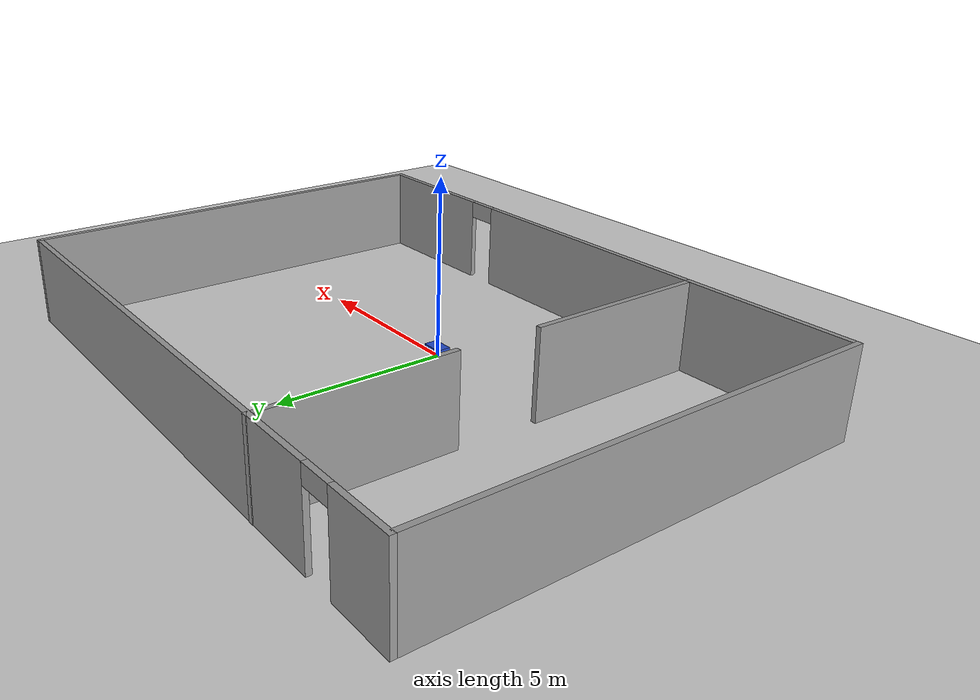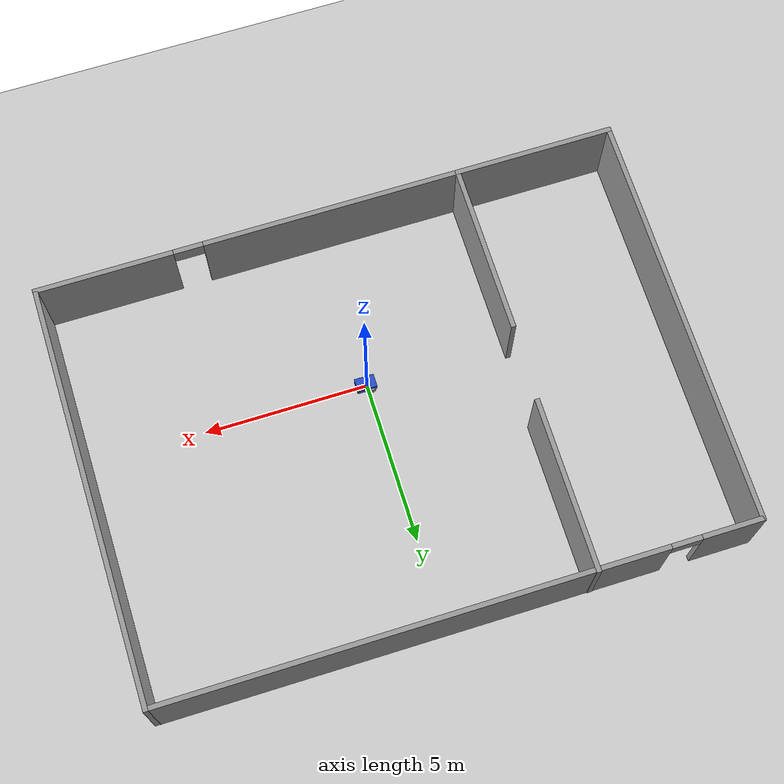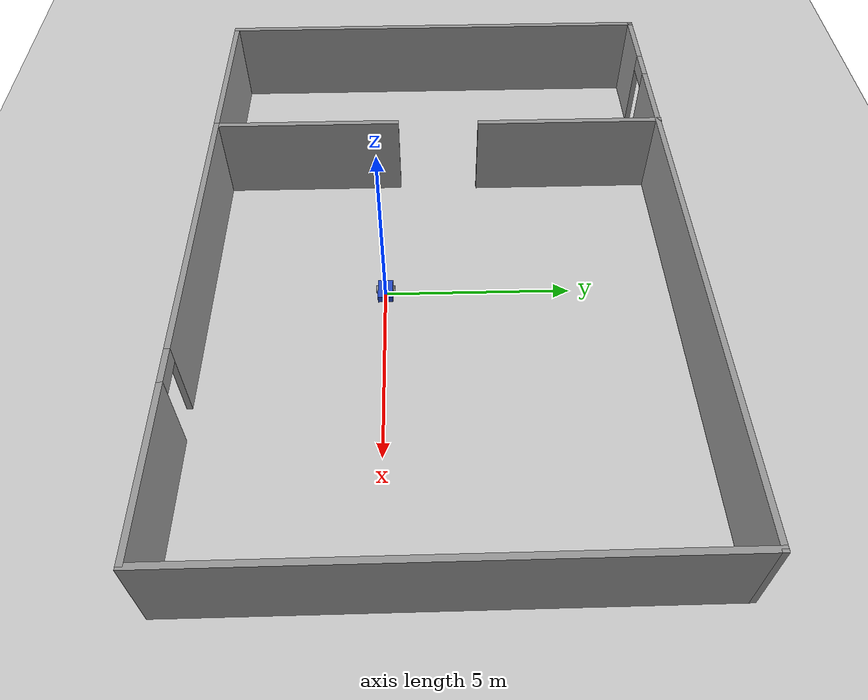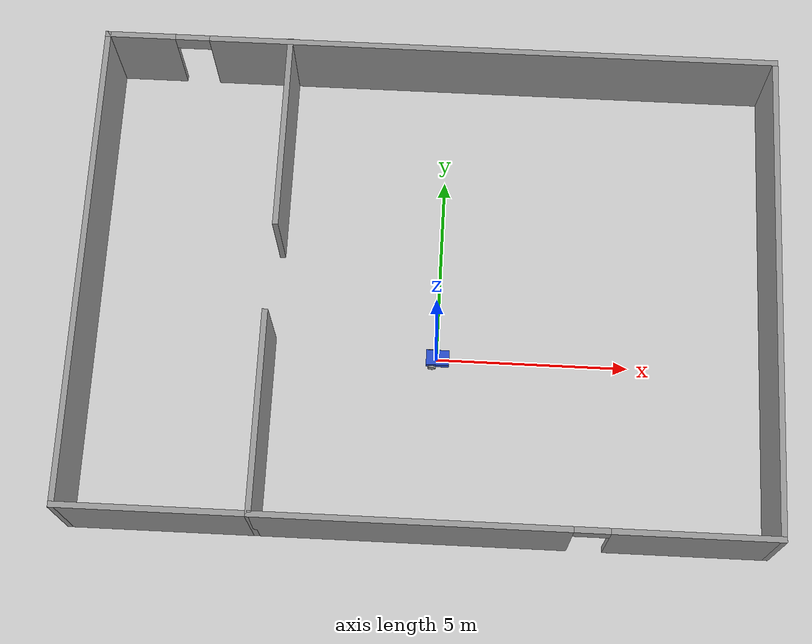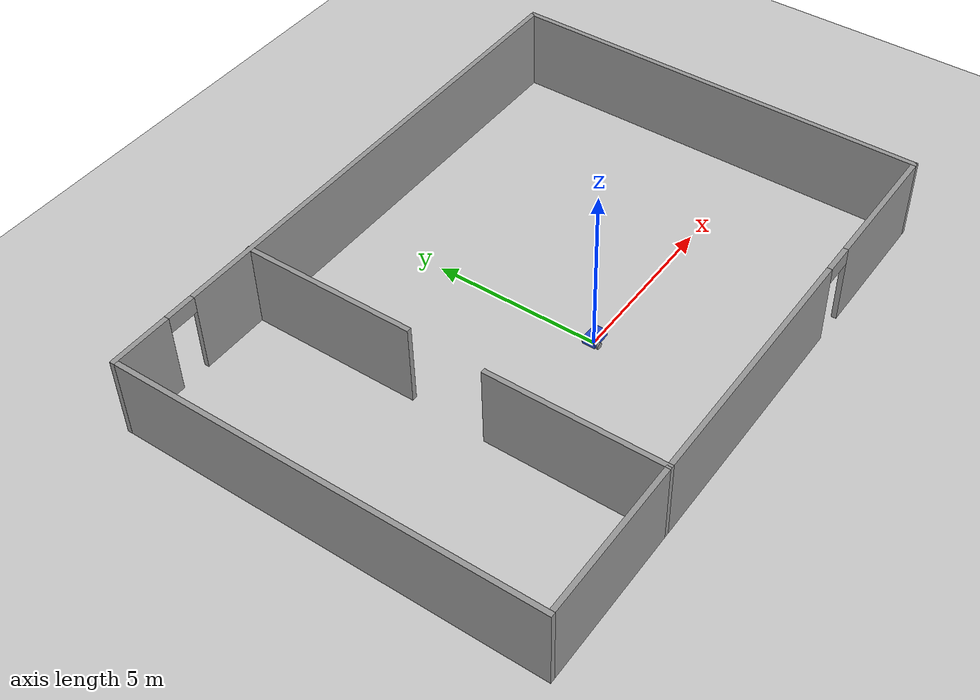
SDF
<sdf version="1.7">
 <world name="default">
  <light name="sun" type="directional">
   <pose>0 0 10 0 -0 0</pose>
   <diffuse>0.8 0.8 0.8 1</diffuse>
   <specular>0.2 0.2 0.2 1</specular>
   <attenuation>
    <range>1000</range>
    <constant>0.9</constant>
    <linear>0.01</linear>
    <quadratic>0.001</quadratic>
   </attenuation>
   <direction>-0.5 0.1 -0.9</direction>
   <spot><inner_angle>0</inner_angle><outer_angle>0</outer_angle><falloff>0</falloff></spot>
  </light>
  <model name="ground_plane">
   <static>1</static>
   <link name="link">
    <collision name="collision">
     <geometry><plane><normal>0 0 1</normal><size>100 100</size></plane></geometry>
     <surface><friction><ode><mu>100</mu><mu2>50</mu2></ode></friction></surface>
    </collision>
    <visual name="visual">
     <cast_shadows>0</cast_shadows>
     <geometry><plane><normal>0 0 1</normal><size>100 100</size></plane></geometry>
     <material>
      <script><uri>file://media/materials/scripts/gazebo.material</uri><name>Gazebo/Grey</name></script>
     </material>
    </visual>
   </link>
  </model>
  <gravity>0 0 -9.8</gravity>
  <magnetic_field>6e-06 2.3e-05 -4.2e-05</magnetic_field>
  <atmosphere type="adiabatic"/>
  <physics type="ode">
   <max_step_size>0.001</max_step_size>
   <real_time_factor>1</real_time_factor>
   <real_time_update_rate>1000</real_time_update_rate>
  </physics>
  <scene><ambient>0.4 0.4 0.4 1</ambient><background>0.7 0.7 0.7 1</background><shadows>1</shadows></scene>
  <audio><device>default</device></audio>
  <spherical_coordinates>
   <surface_model>EARTH_WGS84</surface_model>
   <latitude_deg>0</latitude_deg>
   <longitude_deg>0</longitude_deg>
   <elevation>0</elevation>
   <heading_deg>0</heading_deg>
  </spherical_coordinates>
  <model name="my_robot">
   <link name="base_footprint">
    <inertial>
     <pose>0.018182 0 0.186364 0 -0 0</pose>
     <mass>5.5</mass>
     <inertia>
      <ixx>0.678894</ixx>
      <ixy>0</ixy>
      <ixz>0.0136364</ixz>
      <iyy>0.363742</iyy>
      <iyz>0</iyz>
      <izz>0.886848</izz>
     </inertia>
    </inertial>
    <collision name="base_footprint_fixed_joint_lump__base_link_collision">
     <pose>0 0 0.2 0 -0 0</pose>
     <geometry><box><size>0.6 0.4 0.2</size></box></geometry>
    </collision>
    <collision name="base_footprint_fixed_joint_lump__caster_wheel_link_collision_1">
     <pose>0.2 0 0.05 0 -0 0</pose>
     <geometry><sphere><radius>0.05</radius></sphere></geometry>
     <surface><friction><ode><mu>0.1</mu><mu2>0.1</mu2></ode></friction></surface>
    </collision>
    <visual name="base_footprint_fixed_joint_lump__base_link_visual">
     <pose>0 0 0.2 0 -0 0</pose>
     <geometry><box><size>0.6 0.4 0.2</size></box></geometry>
     <material>
      <script><name>Gazebo/Blue</name><uri>file://media/materials/scripts/gazebo.material</uri></script>
     </material>
    </visual>
    <visual name="base_footprint_fixed_joint_lump__caster_wheel_link_visual_1">
     <pose>0.2 0 0.05 0 -0 0</pose>
     <geometry><sphere><radius>0.05</radius></sphere></geometry>
     <material>
      <script><name>Gazebo/Grey</name><uri>file://media/materials/scripts/gazebo.material</uri></script>
     </material>
    </visual>
   </link>
   <joint name="base_left_back_wheel_joint" type="revolute">
    <pose relative_to="base_footprint">-0.15 0.225 0.1 0 -0 0</pose>
    <parent>base_footprint</parent>
    <child>left_wheel_link</child>
    <axis>
     <xyz>0 1 0</xyz>
     <limit><lower>-1e+16</lower><upper>1e+16</upper></limit>
     <dynamics><spring_reference>0</spring_reference><spring_stiffness>0</spring_stiffness></dynamics>
    </axis>
   </joint>
   <link name="left_wheel_link">
    <pose relative_to="base_left_back_wheel_joint">0 0 0 0 -0 0</pose>
    <inertial>
     <pose>0 0 0 1.5708 -0 0</pose>
     <mass>1</mass>
     <inertia><ixx>0.0108333</ixx><ixy>0</ixy><ixz>0</ixz><iyy>0.0108333</iyy><iyz>0</iyz><izz>0.02</izz></inertia>
    </inertial>
    <collision name="left_wheel_link_collision">
     <pose>0 0 0 1.5708 -0 0</pose>
     <geometry><cylinder><length>0.05</length><radius>0.1</radius></cylinder></geometry>
    </collision>
    <visual name="left_wheel_link_visual">
     <pose>0 0 0 1.5708 -0 0</pose>
     <geometry><cylinder><length>0.05</length><radius>0.1</radius></cylinder></geometry>
     <material>
      <script><name>Gazebo/Grey</name><uri>file://media/materials/scripts/gazebo.material</uri></script>
     </material>
    </visual>
   </link>
   <joint name="base_right_back_wheel_joint" type="revolute">
    <pose relative_to="base_footprint">-0.15 -0.225 0.1 0 -0 0</pose>
    <parent>base_footprint</parent>
    <child>right_wheel_link</child>
    <axis>
     <xyz>0 1 0</xyz>
     <limit><lower>-1e+16</lower><upper>1e+16</upper></limit>
     <dynamics><spring_reference>0</spring_reference><spring_stiffness>0</spring_stiffness></dynamics>
    </axis>
   </joint>
   <link name="right_wheel_link">
    <pose relative_to="base_right_back_wheel_joint">0 0 0 0 -0 0</pose>
    <inertial>
     <pose>0 0 0 1.5708 -0 0</pose>
     <mass>1</mass>
     <inertia><ixx>0.0108333</ixx><ixy>0</ixy><ixz>0</ixz><iyy>0.0108333</iyy><iyz>0</iyz><izz>0.02</izz></inertia>
    </inertial>
    <collision name="right_wheel_link_collision">
     <pose>0 0 0 1.5708 -0 0</pose>
     <geometry><cylinder><length>0.05</length><radius>0.1</radius></cylinder></geometry>
    </collision>
    <visual name="right_wheel_link_visual">
     <pose>0 0 0 1.5708 -0 0</pose>
     <geometry><cylinder><length>0.05</length><radius>0.1</radius></cylinder></geometry>
     <material>
      <script><name>Gazebo/Grey</name><uri>file://media/materials/scripts/gazebo.material</uri></script>
     </material>
    </visual>
   </link>
   <static>0</static>
   <plugin name="diff_drive_controller" filename="libgazebo_ros_diff_drive.so">
    <update_rate>50</update_rate>
    <left_joint>base_left_back_wheel_joint</left_joint>
    <right_joint>base_right_back_wheel_joint</right_joint>
    <wheel_separation>0.45</wheel_separation>
    <wheel_diameter>0.2</wheel_diameter>
    <publish_odom>1</publish_odom>
    <publish_odom_tf>1</publish_odom_tf>
    <publish_wheel_tf>1</publish_wheel_tf>
    <odometry_topic>odom</odometry_topic>
    <odometry_frame>odom</odometry_frame>
    <robot_base_frame>base_footprint</robot_base_frame>
   </plugin>
   <pose>0.040817 0.000353 0 0 0 -0.001752</pose>
  </model>
  <model name="test">
   <pose>-0.26 1.53904 0 0 -0 0</pose>
   <link name="Wall_0">
    <pose>2.375 -6.30904 0 0 -0 0</pose>
    <visual name="Wall_0_Visual_0">
     <pose>-2.55017 0 1.25 0 -0 0</pose>
     <geometry><box><size>7.89965 0.15 2.5</size></box></geometry>
     <material>
      <script><uri>file://media/materials/scripts/gazebo.material</uri><name>Gazebo/Grey</name></script>
      <ambient>1 1 1 1</ambient>
     </material>
     <meta><layer>0</layer></meta>
    </visual>
    <collision name="Wall_0_Collision_0">
     <geometry><box><size>7.89965 0.15 2.5</size></box></geometry>
     <pose>-2.55017 0 1.25 0 -0 0</pose>
    </collision>
    <visual name="Wall_0_Visual_1">
     <pose>4.39983 0 1.25 0 -0 0</pose>
     <geometry><box><size>4.20035 0.15 2.5</size></box></geometry>
     <material>
      <script><uri>file://media/materials/scripts/gazebo.material</uri><name>Gazebo/Grey</name></script>
      <ambient>1 1 1 1</ambient>
     </material>
     <meta><layer>0</layer></meta>
    </visual>
    <collision name="Wall_0_Collision_1">
     <geometry><box><size>4.20035 0.15 2.5</size></box></geometry>
     <pose>4.39983 0 1.25 0 -0 0</pose>
    </collision>
    <visual name="Wall_0_Visual_2">
     <pose>1.84965 0 2.25 0 -0 0</pose>
     <geometry><box><size>0.9 0.15 0.5</size></box></geometry>
     <material>
      <script><uri>file://media/materials/scripts/gazebo.material</uri><name>Gazebo/Grey</name></script>
      <ambient>1 1 1 1</ambient>
     </material>
     <meta><layer>0</layer></meta>
    </visual>
    <collision name="Wall_0_Collision_2">
     <geometry><box><size>0.9 0.15 0.5</size></box></geometry>
     <pose>1.84965 0 2.25 0 -0 0</pose>
    </collision>
   </link>
   <link name="Wall_1">
    <collision name="Wall_1_Collision">
     <geometry><box><size>12.75 0.15 2.5</size></box></geometry>
     <pose>0 0 1.25 0 -0 0</pose>
    </collision>
    <visual name="Wall_1_Visual">
     <pose>0 0 1.25 0 -0 0</pose>
     <geometry><box><size>12.75 0.15 2.5</size></box></geometry>
     <material>
      <script><uri>file://media/materials/scripts/gazebo.material</uri><name>Gazebo/Grey</name></script>
      <ambient>1 1 1 1</ambient>
     </material>
     <meta><layer>0</layer></meta>
    </visual>
    <pose>8.8 -0.009043 0 0 -0 1.5708</pose>
   </link>
   <link name="Wall_2">
    <pose>0 6.29096 0 0 -0 3.14159</pose>
    <visual name="Wall_2_Visual_0">
     <pose>-1.38 0 1.25 0 -0 0</pose>
     <geometry><box><size>14.99 0.15 2.5</size></box></geometry>
     <material>
      <script><uri>file://media/materials/scripts/gazebo.material</uri><name>Gazebo/Grey</name></script>
      <ambient>1 1 1 1</ambient>
     </material>
     <meta><layer>0</layer></meta>
    </visual>
    <collision name="Wall_2_Collision_0">
     <geometry><box><size>14.99 0.15 2.5</size></box></geometry>
     <pose>-1.38 0 1.25 0 -0 0</pose>
    </collision>
    <visual name="Wall_2_Visual_1">
     <pose>7.945 0 1.25 0 -0 0</pose>
     <geometry><box><size>1.86 0.15 2.5</size></box></geometry>
     <material>
      <script><uri>file://media/materials/scripts/gazebo.material</uri><name>Gazebo/Grey</name></script>
      <ambient>1 1 1 1</ambient>
     </material>
     <meta><layer>0</layer></meta>
    </visual>
    <collision name="Wall_2_Collision_1">
     <geometry><box><size>1.86 0.15 2.5</size></box></geometry>
     <pose>7.945 0 1.25 0 -0 0</pose>
    </collision>
    <visual name="Wall_2_Visual_2">
     <pose>6.565 0 2.25 0 -0 0</pose>
     <geometry><box><size>0.9 0.15 0.5</size></box></geometry>
     <material>
      <script><uri>file://media/materials/scripts/gazebo.material</uri><name>Gazebo/Grey</name></script>
      <ambient>1 1 1 1</ambient>
     </material>
     <meta><layer>0</layer></meta>
    </visual>
    <collision name="Wall_2_Collision_2">
     <geometry><box><size>0.9 0.15 0.5</size></box></geometry>
     <pose>6.565 0 2.25 0 -0 0</pose>
    </collision>
   </link>
   <link name="Wall_3">
    <collision name="Wall_3_Collision">
     <geometry><box><size>12.75 0.15 2.5</size></box></geometry>
     <pose>0 0 1.25 0 -0 0</pose>
    </collision>
    <visual name="Wall_3_Visual">
     <pose>0 0 1.25 0 -0 0</pose>
     <geometry><box><size>12.75 0.15 2.5</size></box></geometry>
     <material>
      <script><uri>file://media/materials/scripts/gazebo.material</uri><name>Gazebo/Grey</name></script>
      <ambient>1 1 1 1</ambient>
     </material>
     <meta><layer>0</layer></meta>
    </visual>
    <pose>-8.8 -0.009043 0 0 -0 -1.5708</pose>
   </link>
   <link name="Wall_4">
    <collision name="Wall_4_Collision">
     <geometry><box><size>4.9 0.15 2.5</size></box></geometry>
     <pose>0 0 1.25 0 -0 0</pose>
    </collision>
    <visual name="Wall_4_Visual">
     <pose>0 0 1.25 0 -0 0</pose>
     <geometry><box><size>4.9 0.15 2.5</size></box></geometry>
     <material>
      <script><uri>file://media/materials/scripts/gazebo.material</uri><name>Gazebo/Grey</name></script>
      <ambient>1 1 1 1</ambient>
     </material>
     <meta><layer>0</layer></meta>
    </visual>
    <pose>-6.425 -6.30904 0 0 -0 0</pose>
   </link>
   <link name="Wall_5">
    <collision name="Wall_5_Collision">
     <geometry><box><size>5.25 0.15 2.5</size></box></geometry>
     <pose>0 0 1.25 0 -0 0</pose>
    </collision>
    <visual name="Wall_5_Visual">
     <pose>0 0 1.25 0 -0 0</pose>
     <geometry><box><size>5.25 0.15 2.5</size></box></geometry>
     <material>
      <script><uri>file://media/materials/scripts/gazebo.material</uri><name>Gazebo/Grey</name></script>
      <ambient>1 1 1 1</ambient>
     </material>
     <meta><layer>0</layer></meta>
    </visual>
    <pose>-4.05 -3.75904 0 0 -0 1.5708</pose>
   </link>
   <link name="Wall_7">
    <collision name="Wall_7_Collision">
     <geometry><box><size>5.25 0.15 2.5</size></box></geometry>
     <pose>0 0 1.25 0 -0 0</pose>
    </collision>
    <visual name="Wall_7_Visual">
     <pose>0 0 1.25 0 -0 0</pose>
     <geometry><box><size>5.25 0.15 2.5</size></box></geometry>
     <material>
      <script><uri>file://media/materials/scripts/gazebo.material</uri><name>Gazebo/Grey</name></script>
      <ambient>1 1 1 1</ambient>
     </material>
     <meta><layer>0</layer></meta>
    </visual>
    <pose>-3.97437 3.75904 0 0 -0 -1.5708</pose>
   </link>
   <static>1</static>
  </model>
 </world>
</sdf>
